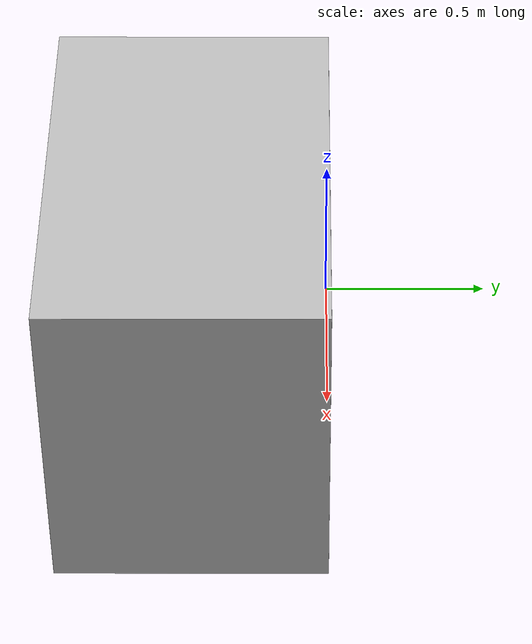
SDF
<sdf version="1.7">
<model name="box_1185x785x1010" canonical_link="node0_link">
  <link name="node0_link">
    <collision name="node0_collision">
      <pose relative_to="node0_link">0.59250 -0.39250 0.50500 0.00000 0.00000 0.00000</pose>
      <geometry>
        <box>
          <size>1.185 0.785 1.01</size>
        </box>
      </geometry>

      <surface>
      <friction>
        <ode>
          <mu>1</mu>
          <mu2>1</mu2>
          <slip1>0</slip1>
          <slip2>0</slip2>
        </ode>
      </friction>
      <contact>
        <ode>
          <soft_cfm>0</soft_cfm>
          <soft_erp>0.2</soft_erp>
          <kp>1e+13</kp>
          <kd>1</kd>
          <max_vel>0.01</max_vel>
          <min_depth>0</min_depth>
        </ode>
      </contact>
      </surface>

    </collision>
    <inertial>
      <inertia>
        <ixx>34.08996</ixx>
        <ixy>-0.00000</ixy>
        <ixz>-0.00000</ixz>
        <iyy>50.50658</iyy>
        <iyz>-0.00000</iyz>
        <izz>42.09254</izz>
      </inertia>
      <pose relative_to="node0_link">0.59250 -0.39250 0.50500 0.00000 0.00000 0.00000</pose>
      <mass>50.00000</mass>
    </inertial>
    <visual name="node0">
      <pose relative_to="node0_link">0.00000 0.00000 0.00000 0.00000 0.00000 0.00000</pose>
      <geometry>
        <mesh>
          <uri>meshes/textured_1185x785x1010.dae</uri>
          <scale>1.00000 1.00000 1.00000</scale>
        </mesh>
      </geometry>
    </visual>
  </link>
</model>
</sdf>
